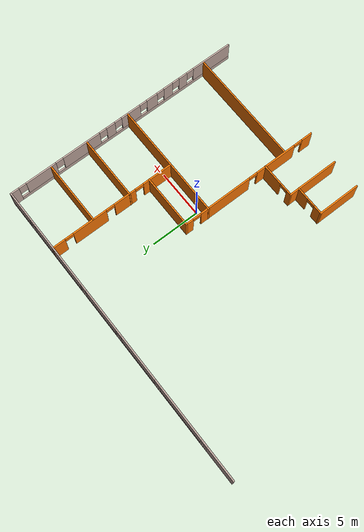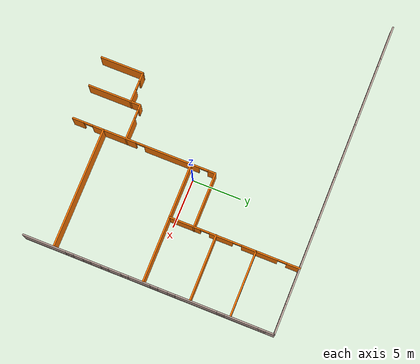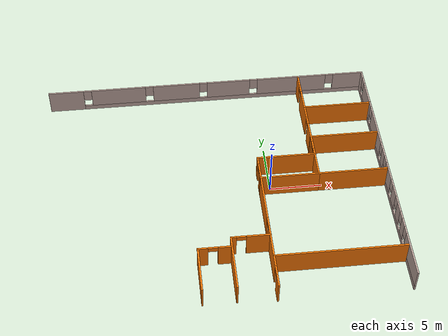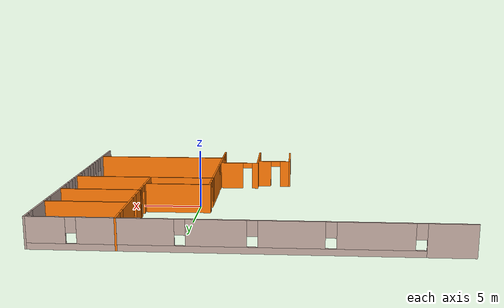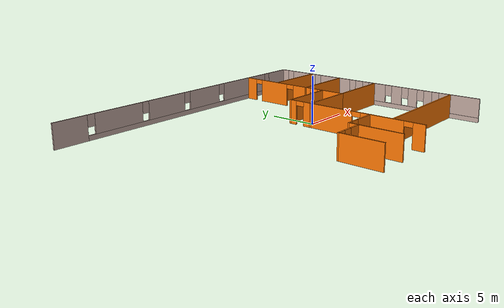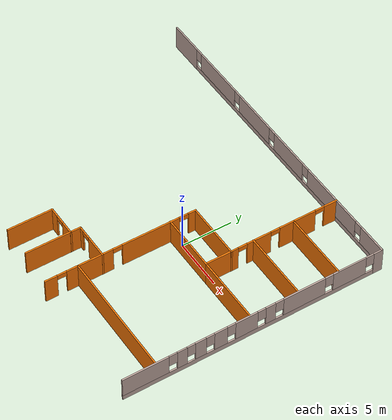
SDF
<sdf version="1.6">
 <model name="Building">
  <pose>-10.6691 -0.029366 0 0 -0 0</pose>
  <link name="Wall_158">
   <pose>5.73934 12.8407 0 0 -0 0</pose>
   <visual name="Wall_158_Visual_0">
    <pose>-14.4808 0 1.25 0 -0 0</pose>
    <geometry><box><size>3.53833 0.15 2.5</size></box></geometry>
    <material>
     <script><uri>file://media/materials/scripts/gazebo.material</uri><name>Gazebo/Grey</name></script>
     <ambient>0.760784 0.662745 0.627451 1</ambient>
    </material>
    <meta><layer>0</layer></meta>
   </visual>
   <collision name="Wall_158_Collision_0">
    <geometry><box><size>3.53833 0.15 2.5</size></box></geometry>
    <pose>-14.4808 0 1.25 0 -0 0</pose>
   </collision>
   <visual name="Wall_158_Visual_1">
    <pose>1.76917 0 0.25 0 -0 0</pose>
    <geometry><box><size>28.9617 0.15 0.5</size></box></geometry>
    <material>
     <script><uri>file://media/materials/scripts/gazebo.material</uri><name>Gazebo/Grey</name></script>
     <ambient>0.760784 0.662745 0.627451 1</ambient>
    </material>
    <meta><layer>0</layer></meta>
   </visual>
   <collision name="Wall_158_Collision_1">
    <geometry><box><size>28.9617 0.15 0.5</size></box></geometry>
    <pose>1.76917 0 0.25 0 -0 0</pose>
   </collision>
   <visual name="Wall_158_Visual_2">
    <pose>-9.14295 0 1.5 0 -0 0</pose>
    <geometry><box><size>5.53743 0.15 2</size></box></geometry>
    <material>
     <script><uri>file://media/materials/scripts/gazebo.material</uri><name>Gazebo/Grey</name></script>
     <ambient>0.760784 0.662745 0.627451 1</ambient>
    </material>
    <meta><layer>0</layer></meta>
   </visual>
   <collision name="Wall_158_Collision_2">
    <geometry><box><size>5.53743 0.15 2</size></box></geometry>
    <pose>-9.14295 0 1.5 0 -0 0</pose>
   </collision>
   <visual name="Wall_158_Visual_3">
    <pose>-3.18054 0 1.5 0 -0 0</pose>
    <geometry><box><size>4.7874 0.15 2</size></box></geometry>
    <material>
     <script><uri>file://media/materials/scripts/gazebo.material</uri><name>Gazebo/Grey</name></script>
     <ambient>0.760784 0.662745 0.627451 1</ambient>
    </material>
    <meta><layer>0</layer></meta>
   </visual>
   <collision name="Wall_158_Collision_3">
    <geometry><box><size>4.7874 0.15 2</size></box></geometry>
    <pose>-3.18054 0 1.5 0 -0 0</pose>
   </collision>
   <visual name="Wall_158_Visual_4">
    <pose>2.2199 0 1.5 0 -0 0</pose>
    <geometry><box><size>4.41347 0.15 2</size></box></geometry>
    <material>
     <script><uri>file://media/materials/scripts/gazebo.material</uri><name>Gazebo/Grey</name></script>
     <ambient>0.760784 0.662745 0.627451 1</ambient>
    </material>
    <meta><layer>0</layer></meta>
   </visual>
   <collision name="Wall_158_Collision_4">
    <geometry><box><size>4.41347 0.15 2</size></box></geometry>
    <pose>2.2199 0 1.5 0 -0 0</pose>
   </collision>
   <visual name="Wall_158_Visual_5">
    <pose>8.79242 0 1.5 0 -0 0</pose>
    <geometry><box><size>7.13158 0.15 2</size></box></geometry>
    <material>
     <script><uri>file://media/materials/scripts/gazebo.material</uri><name>Gazebo/Grey</name></script>
     <ambient>0.760784 0.662745 0.627451 1</ambient>
    </material>
    <meta><layer>0</layer></meta>
   </visual>
   <collision name="Wall_158_Collision_5">
    <geometry><box><size>7.13158 0.15 2</size></box></geometry>
    <pose>8.79242 0 1.5 0 -0 0</pose>
   </collision>
   <visual name="Wall_158_Visual_6">
    <pose>14.7041 0 1.5 0 -0 0</pose>
    <geometry><box><size>3.09179 0.15 2</size></box></geometry>
    <material>
     <script><uri>file://media/materials/scripts/gazebo.material</uri><name>Gazebo/Grey</name></script>
     <ambient>0.760784 0.662745 0.627451 1</ambient>
    </material>
    <meta><layer>0</layer></meta>
   </visual>
   <collision name="Wall_158_Collision_6">
    <geometry><box><size>3.09179 0.15 2</size></box></geometry>
    <pose>14.7041 0 1.5 0 -0 0</pose>
   </collision>
   <visual name="Wall_158_Visual_7">
    <pose>-12.3117 0 1.9 0 -0 0</pose>
    <geometry><box><size>0.8 0.15 1.2</size></box></geometry>
    <material>
     <script><uri>file://media/materials/scripts/gazebo.material</uri><name>Gazebo/Grey</name></script>
     <ambient>0.760784 0.662745 0.627451 1</ambient>
    </material>
    <meta><layer>0</layer></meta>
   </visual>
   <collision name="Wall_158_Collision_7">
    <geometry><box><size>0.8 0.15 1.2</size></box></geometry>
    <pose>-12.3117 0 1.9 0 -0 0</pose>
   </collision>
   <visual name="Wall_158_Visual_8">
    <pose>-5.97424 0 1.9 0 -0 0</pose>
    <geometry><box><size>0.8 0.15 1.2</size></box></geometry>
    <material>
     <script><uri>file://media/materials/scripts/gazebo.material</uri><name>Gazebo/Grey</name></script>
     <ambient>0.760784 0.662745 0.627451 1</ambient>
    </material>
    <meta><layer>0</layer></meta>
   </visual>
   <collision name="Wall_158_Collision_8">
    <geometry><box><size>0.8 0.15 1.2</size></box></geometry>
    <pose>-5.97424 0 1.9 0 -0 0</pose>
   </collision>
   <visual name="Wall_158_Visual_9">
    <pose>-0.386836 0 1.9 0 -0 0</pose>
    <geometry><box><size>0.8 0.15 1.2</size></box></geometry>
    <material>
     <script><uri>file://media/materials/scripts/gazebo.material</uri><name>Gazebo/Grey</name></script>
     <ambient>0.760784 0.662745 0.627451 1</ambient>
    </material>
    <meta><layer>0</layer></meta>
   </visual>
   <collision name="Wall_158_Collision_9">
    <geometry><box><size>0.8 0.15 1.2</size></box></geometry>
    <pose>-0.386836 0 1.9 0 -0 0</pose>
   </collision>
   <visual name="Wall_158_Visual_10">
    <pose>4.82663 0 1.9 0 -0 0</pose>
    <geometry><box><size>0.8 0.15 1.2</size></box></geometry>
    <material>
     <script><uri>file://media/materials/scripts/gazebo.material</uri><name>Gazebo/Grey</name></script>
     <ambient>0.760784 0.662745 0.627451 1</ambient>
    </material>
    <meta><layer>0</layer></meta>
   </visual>
   <collision name="Wall_158_Collision_10">
    <geometry><box><size>0.8 0.15 1.2</size></box></geometry>
    <pose>4.82663 0 1.9 0 -0 0</pose>
   </collision>
   <visual name="Wall_158_Visual_11">
    <pose>12.7582 0 1.9 0 -0 0</pose>
    <geometry><box><size>0.8 0.15 1.2</size></box></geometry>
    <material>
     <script><uri>file://media/materials/scripts/gazebo.material</uri><name>Gazebo/Grey</name></script>
     <ambient>0.760784 0.662745 0.627451 1</ambient>
    </material>
    <meta><layer>0</layer></meta>
   </visual>
   <collision name="Wall_158_Collision_11">
    <geometry><box><size>0.8 0.15 1.2</size></box></geometry>
    <pose>12.7582 0 1.9 0 -0 0</pose>
   </collision>
  </link>
  <link name="Wall_160">
   <pose>21.925 0.027541 0 0 0 -1.56997</pose>
   <visual name="Wall_160_Visual_0">
    <pose>-12.4183 0 1.25 0 -0 0</pose>
    <geometry><box><size>0.939904 0.15 2.5</size></box></geometry>
    <material>
     <script><uri>file://media/materials/scripts/gazebo.material</uri><name>Gazebo/Grey</name></script>
     <ambient>0.760784 0.662745 0.627451 1</ambient>
    </material>
    <meta><layer>0</layer></meta>
   </visual>
   <collision name="Wall_160_Collision_0">
    <geometry><box><size>0.939904 0.15 2.5</size></box></geometry>
    <pose>-12.4183 0 1.25 0 -0 0</pose>
   </collision>
   <visual name="Wall_160_Visual_1">
    <pose>0.469952 0 0.25 0 -0 0</pose>
    <geometry><box><size>24.8365 0.15 0.5</size></box></geometry>
    <material>
     <script><uri>file://media/materials/scripts/gazebo.material</uri><name>Gazebo/Grey</name></script>
     <ambient>0.760784 0.662745 0.627451 1</ambient>
    </material>
    <meta><layer>0</layer></meta>
   </visual>
   <collision name="Wall_160_Collision_1">
    <geometry><box><size>24.8365 0.15 0.5</size></box></geometry>
    <pose>0.469952 0 0.25 0 -0 0</pose>
   </collision>
   <visual name="Wall_160_Visual_2">
    <pose>-9.46541 0 1.5 0 -0 0</pose>
    <geometry><box><size>3.36577 0.15 2</size></box></geometry>
    <material>
     <script><uri>file://media/materials/scripts/gazebo.material</uri><name>Gazebo/Grey</name></script>
     <ambient>0.760784 0.662745 0.627451 1</ambient>
    </material>
    <meta><layer>0</layer></meta>
   </visual>
   <collision name="Wall_160_Collision_2">
    <geometry><box><size>3.36577 0.15 2</size></box></geometry>
    <pose>-9.46541 0 1.5 0 -0 0</pose>
   </collision>
   <visual name="Wall_160_Visual_3">
    <pose>-4.87743 0 1.5 0 -0 0</pose>
    <geometry><box><size>4.21019 0.15 2</size></box></geometry>
    <material>
     <script><uri>file://media/materials/scripts/gazebo.material</uri><name>Gazebo/Grey</name></script>
     <ambient>0.760784 0.662745 0.627451 1</ambient>
    </material>
    <meta><layer>0</layer></meta>
   </visual>
   <collision name="Wall_160_Collision_3">
    <geometry><box><size>4.21019 0.15 2</size></box></geometry>
    <pose>-4.87743 0 1.5 0 -0 0</pose>
   </collision>
   <visual name="Wall_160_Visual_4">
    <pose>-1.48571 0 1.5 0 -0 0</pose>
    <geometry><box><size>0.973268 0.15 2</size></box></geometry>
    <material>
     <script><uri>file://media/materials/scripts/gazebo.material</uri><name>Gazebo/Grey</name></script>
     <ambient>0.760784 0.662745 0.627451 1</ambient>
    </material>
    <meta><layer>0</layer></meta>
   </visual>
   <collision name="Wall_160_Collision_4">
    <geometry><box><size>0.973268 0.15 2</size></box></geometry>
    <pose>-1.48571 0 1.5 0 -0 0</pose>
   </collision>
   <visual name="Wall_160_Visual_5">
    <pose>0.892725 0 1.5 0 -0 0</pose>
    <geometry><box><size>2.18359 0.15 2</size></box></geometry>
    <material>
     <script><uri>file://media/materials/scripts/gazebo.material</uri><name>Gazebo/Grey</name></script>
     <ambient>0.760784 0.662745 0.627451 1</ambient>
    </material>
    <meta><layer>0</layer></meta>
   </visual>
   <collision name="Wall_160_Collision_5">
    <geometry><box><size>2.18359 0.15 2</size></box></geometry>
    <pose>0.892725 0 1.5 0 -0 0</pose>
   </collision>
   <visual name="Wall_160_Visual_6">
    <pose>3.41189 0 1.5 0 -0 0</pose>
    <geometry><box><size>1.25474 0.15 2</size></box></geometry>
    <material>
     <script><uri>file://media/materials/scripts/gazebo.material</uri><name>Gazebo/Grey</name></script>
     <ambient>0.760784 0.662745 0.627451 1</ambient>
    </material>
    <meta><layer>0</layer></meta>
   </visual>
   <collision name="Wall_160_Collision_6">
    <geometry><box><size>1.25474 0.15 2</size></box></geometry>
    <pose>3.41189 0 1.5 0 -0 0</pose>
   </collision>
   <visual name="Wall_160_Visual_7">
    <pose>5.36812 0 1.5 0 -0 0</pose>
    <geometry><box><size>1.05771 0.15 2</size></box></geometry>
    <material>
     <script><uri>file://media/materials/scripts/gazebo.material</uri><name>Gazebo/Grey</name></script>
     <ambient>0.760784 0.662745 0.627451 1</ambient>
    </material>
    <meta><layer>0</layer></meta>
   </visual>
   <collision name="Wall_160_Collision_7">
    <geometry><box><size>1.05771 0.15 2</size></box></geometry>
    <pose>5.36812 0 1.5 0 -0 0</pose>
   </collision>
   <visual name="Wall_160_Visual_8">
    <pose>7.16955 0 1.5 0 -0 0</pose>
    <geometry><box><size>0.945153 0.15 2</size></box></geometry>
    <material>
     <script><uri>file://media/materials/scripts/gazebo.material</uri><name>Gazebo/Grey</name></script>
     <ambient>0.760784 0.662745 0.627451 1</ambient>
    </material>
    <meta><layer>0</layer></meta>
   </visual>
   <collision name="Wall_160_Collision_8">
    <geometry><box><size>0.945153 0.15 2</size></box></geometry>
    <pose>7.16955 0 1.5 0 -0 0</pose>
   </collision>
   <visual name="Wall_160_Visual_9">
    <pose>10.6652 0 1.5 0 -0 0</pose>
    <geometry><box><size>4.44608 0.15 2</size></box></geometry>
    <material>
     <script><uri>file://media/materials/scripts/gazebo.material</uri><name>Gazebo/Grey</name></script>
     <ambient>0.760784 0.662745 0.627451 1</ambient>
    </material>
    <meta><layer>0</layer></meta>
   </visual>
   <collision name="Wall_160_Collision_9">
    <geometry><box><size>4.44608 0.15 2</size></box></geometry>
    <pose>10.6652 0 1.5 0 -0 0</pose>
   </collision>
   <visual name="Wall_160_Visual_10">
    <pose>-11.5483 0 1.9 0 -0 0</pose>
    <geometry><box><size>0.8 0.15 1.2</size></box></geometry>
    <material>
     <script><uri>file://media/materials/scripts/gazebo.material</uri><name>Gazebo/Grey</name></script>
     <ambient>0.760784 0.662745 0.627451 1</ambient>
    </material>
    <meta><layer>0</layer></meta>
   </visual>
   <collision name="Wall_160_Collision_10">
    <geometry><box><size>0.8 0.15 1.2</size></box></geometry>
    <pose>-11.5483 0 1.9 0 -0 0</pose>
   </collision>
   <visual name="Wall_160_Visual_11">
    <pose>-7.38253 0 1.9 0 -0 0</pose>
    <geometry><box><size>0.8 0.15 1.2</size></box></geometry>
    <material>
     <script><uri>file://media/materials/scripts/gazebo.material</uri><name>Gazebo/Grey</name></script>
     <ambient>0.760784 0.662745 0.627451 1</ambient>
    </material>
    <meta><layer>0</layer></meta>
   </visual>
   <collision name="Wall_160_Collision_11">
    <geometry><box><size>0.8 0.15 1.2</size></box></geometry>
    <pose>-7.38253 0 1.9 0 -0 0</pose>
   </collision>
   <visual name="Wall_160_Visual_12">
    <pose>-2.37234 0 1.9 0 -0 0</pose>
    <geometry><box><size>0.8 0.15 1.2</size></box></geometry>
    <material>
     <script><uri>file://media/materials/scripts/gazebo.material</uri><name>Gazebo/Grey</name></script>
     <ambient>0.760784 0.662745 0.627451 1</ambient>
    </material>
    <meta><layer>0</layer></meta>
   </visual>
   <collision name="Wall_160_Collision_12">
    <geometry><box><size>0.8 0.15 1.2</size></box></geometry>
    <pose>-2.37234 0 1.9 0 -0 0</pose>
   </collision>
   <visual name="Wall_160_Visual_13">
    <pose>-0.599072 0 1.9 0 -0 0</pose>
    <geometry><box><size>0.8 0.15 1.2</size></box></geometry>
    <material>
     <script><uri>file://media/materials/scripts/gazebo.material</uri><name>Gazebo/Grey</name></script>
     <ambient>0.760784 0.662745 0.627451 1</ambient>
    </material>
    <meta><layer>0</layer></meta>
   </visual>
   <collision name="Wall_160_Collision_13">
    <geometry><box><size>0.8 0.15 1.2</size></box></geometry>
    <pose>-0.599072 0 1.9 0 -0 0</pose>
   </collision>
   <visual name="Wall_160_Visual_14">
    <pose>2.38452 0 1.9 0 -0 0</pose>
    <geometry><box><size>0.8 0.15 1.2</size></box></geometry>
    <material>
     <script><uri>file://media/materials/scripts/gazebo.material</uri><name>Gazebo/Grey</name></script>
     <ambient>0.760784 0.662745 0.627451 1</ambient>
    </material>
    <meta><layer>0</layer></meta>
   </visual>
   <collision name="Wall_160_Collision_14">
    <geometry><box><size>0.8 0.15 1.2</size></box></geometry>
    <pose>2.38452 0 1.9 0 -0 0</pose>
   </collision>
   <visual name="Wall_160_Visual_15">
    <pose>4.43926 0 1.9 0 -0 0</pose>
    <geometry><box><size>0.8 0.15 1.2</size></box></geometry>
    <material>
     <script><uri>file://media/materials/scripts/gazebo.material</uri><name>Gazebo/Grey</name></script>
     <ambient>0.760784 0.662745 0.627451 1</ambient>
    </material>
    <meta><layer>0</layer></meta>
   </visual>
   <collision name="Wall_160_Collision_15">
    <geometry><box><size>0.8 0.15 1.2</size></box></geometry>
    <pose>4.43926 0 1.9 0 -0 0</pose>
   </collision>
   <visual name="Wall_160_Visual_16">
    <pose>6.29697 0 1.9 0 -0 0</pose>
    <geometry><box><size>0.8 0.15 1.2</size></box></geometry>
    <material>
     <script><uri>file://media/materials/scripts/gazebo.material</uri><name>Gazebo/Grey</name></script>
     <ambient>0.760784 0.662745 0.627451 1</ambient>
    </material>
    <meta><layer>0</layer></meta>
   </visual>
   <collision name="Wall_160_Collision_16">
    <geometry><box><size>0.8 0.15 1.2</size></box></geometry>
    <pose>6.29697 0 1.9 0 -0 0</pose>
   </collision>
   <visual name="Wall_160_Visual_17">
    <pose>8.04212 0 1.9 0 -0 0</pose>
    <geometry><box><size>0.8 0.15 1.2</size></box></geometry>
    <material>
     <script><uri>file://media/materials/scripts/gazebo.material</uri><name>Gazebo/Grey</name></script>
     <ambient>0.760784 0.662745 0.627451 1</ambient>
    </material>
    <meta><layer>0</layer></meta>
   </visual>
   <collision name="Wall_160_Collision_17">
    <geometry><box><size>0.8 0.15 1.2</size></box></geometry>
    <pose>8.04212 0 1.9 0 -0 0</pose>
   </collision>
  </link>
  <link name="Wall_168">
   <pose>15.2204 6.16765 0 0 0 -1.5708</pose>
   <visual name="Wall_168_Visual_0">
    <pose>-6.05122 0 1.25 0 -0 0</pose>
    <geometry><box><size>1.39756 0.15 2.5</size></box></geometry>
    <material>
     <script><uri>file://media/materials/scripts/gazebo.material</uri><name>Gazebo/Grey</name></script>
     <ambient>0.996078 0.47451 0.0196078 1</ambient>
    </material>
    <meta><layer>0</layer></meta>
   </visual>
   <collision name="Wall_168_Collision_0">
    <geometry><box><size>1.39756 0.15 2.5</size></box></geometry>
    <pose>-6.05122 0 1.25 0 -0 0</pose>
   </collision>
   <visual name="Wall_168_Visual_1">
    <pose>-2.60621 0 1.25 0 -0 0</pose>
    <geometry><box><size>3.69245 0.15 2.5</size></box></geometry>
    <material>
     <script><uri>file://media/materials/scripts/gazebo.material</uri><name>Gazebo/Grey</name></script>
     <ambient>0.996078 0.47451 0.0196078 1</ambient>
    </material>
    <meta><layer>0</layer></meta>
   </visual>
   <collision name="Wall_168_Collision_1">
    <geometry><box><size>3.69245 0.15 2.5</size></box></geometry>
    <pose>-2.60621 0 1.25 0 -0 0</pose>
   </collision>
   <visual name="Wall_168_Visual_2">
    <pose>1.3484 0 1.25 0 -0 0</pose>
    <geometry><box><size>2.41677 0.15 2.5</size></box></geometry>
    <material>
     <script><uri>file://media/materials/scripts/gazebo.material</uri><name>Gazebo/Grey</name></script>
     <ambient>0.996078 0.47451 0.0196078 1</ambient>
    </material>
    <meta><layer>0</layer></meta>
   </visual>
   <collision name="Wall_168_Collision_2">
    <geometry><box><size>2.41677 0.15 2.5</size></box></geometry>
    <pose>1.3484 0 1.25 0 -0 0</pose>
   </collision>
   <visual name="Wall_168_Visual_3">
    <pose>5.10339 0 1.25 0 -0 0</pose>
    <geometry><box><size>3.29322 0.15 2.5</size></box></geometry>
    <material>
     <script><uri>file://media/materials/scripts/gazebo.material</uri><name>Gazebo/Grey</name></script>
     <ambient>0.996078 0.47451 0.0196078 1</ambient>
    </material>
    <meta><layer>0</layer></meta>
   </visual>
   <collision name="Wall_168_Collision_3">
    <geometry><box><size>3.29322 0.15 2.5</size></box></geometry>
    <pose>5.10339 0 1.25 0 -0 0</pose>
   </collision>
   <visual name="Wall_168_Visual_4">
    <pose>-4.90244 0 2.25 0 -0 0</pose>
    <geometry><box><size>0.9 0.15 0.5</size></box></geometry>
    <material>
     <script><uri>file://media/materials/scripts/gazebo.material</uri><name>Gazebo/Grey</name></script>
     <ambient>0.996078 0.47451 0.0196078 1</ambient>
    </material>
    <meta><layer>0</layer></meta>
   </visual>
   <collision name="Wall_168_Collision_4">
    <geometry><box><size>0.9 0.15 0.5</size></box></geometry>
    <pose>-4.90244 0 2.25 0 -0 0</pose>
   </collision>
   <visual name="Wall_168_Visual_5">
    <pose>-0.309989 0 2.25 0 -0 0</pose>
    <geometry><box><size>0.9 0.15 0.5</size></box></geometry>
    <material>
     <script><uri>file://media/materials/scripts/gazebo.material</uri><name>Gazebo/Grey</name></script>
     <ambient>0.996078 0.47451 0.0196078 1</ambient>
    </material>
    <meta><layer>0</layer></meta>
   </visual>
   <collision name="Wall_168_Collision_5">
    <geometry><box><size>0.9 0.15 0.5</size></box></geometry>
    <pose>-0.309989 0 2.25 0 -0 0</pose>
   </collision>
   <visual name="Wall_168_Visual_6">
    <pose>3.00678 0 2.25 0 -0 0</pose>
    <geometry><box><size>0.9 0.15 0.5</size></box></geometry>
    <material>
     <script><uri>file://media/materials/scripts/gazebo.material</uri><name>Gazebo/Grey</name></script>
     <ambient>0.996078 0.47451 0.0196078 1</ambient>
    </material>
    <meta><layer>0</layer></meta>
   </visual>
   <collision name="Wall_168_Collision_6">
    <geometry><box><size>0.9 0.15 0.5</size></box></geometry>
    <pose>3.00678 0 2.25 0 -0 0</pose>
   </collision>
  </link>
  <link name="Wall_169">
   <collision name="Wall_169_Collision">
    <geometry><box><size>6.75 0.15 2.5</size></box></geometry>
    <pose>0 0 1.25 0 -0 0</pose>
   </collision>
   <visual name="Wall_169_Visual">
    <pose>0 0 1.25 0 -0 0</pose>
    <geometry><box><size>6.75 0.15 2.5</size></box></geometry>
    <material>
     <script><uri>file://media/materials/scripts/gazebo.material</uri><name>Gazebo/Grey</name></script>
     <ambient>0.996078 0.47451 0.0196078 1</ambient>
    </material>
    <meta><layer>0</layer></meta>
   </visual>
   <pose>18.5204 -0.507347 0 0 -0 0</pose>
  </link>
  <link name="Wall_171">
   <collision name="Wall_171_Collision">
    <geometry><box><size>6.75 0.15 2.5</size></box></geometry>
    <pose>0 0 1.25 0 -0 0</pose>
   </collision>
   <visual name="Wall_171_Visual">
    <pose>0 0 1.25 0 -0 0</pose>
    <geometry><box><size>6.75 0.15 2.5</size></box></geometry>
    <material>
     <script><uri>file://media/materials/scripts/gazebo.material</uri><name>Gazebo/Grey</name></script>
     <ambient>0.996078 0.47451 0.0196078 1</ambient>
    </material>
    <meta><layer>0</layer></meta>
   </visual>
   <pose>18.5682 8.3698 0 0 -0 0</pose>
  </link>
  <link name="Wall_173">
   <collision name="Wall_173_Collision">
    <geometry><box><size>6.75 0.15 2.5</size></box></geometry>
    <pose>0 0 1.25 0 -0 0</pose>
   </collision>
   <visual name="Wall_173_Visual">
    <pose>0 0 1.25 0 -0 0</pose>
    <geometry><box><size>6.75 0.15 2.5</size></box></geometry>
    <material>
     <script><uri>file://media/materials/scripts/gazebo.material</uri><name>Gazebo/Grey</name></script>
     <ambient>0.996078 0.47451 0.0196078 1</ambient>
    </material>
    <meta><layer>0</layer></meta>
   </visual>
   <pose>18.4965 4.27965 0 0 -0 0</pose>
  </link>
  <link name="Wall_176">
   <collision name="Wall_176_Collision">
    <geometry><box><size>5.75 0.15 2.5</size></box></geometry>
    <pose>0 0 1.25 0 -0 0</pose>
   </collision>
   <visual name="Wall_176_Visual">
    <pose>0 0 1.25 0 -0 0</pose>
    <geometry><box><size>5.75 0.15 2.5</size></box></geometry>
    <material>
     <script><uri>file://media/materials/scripts/gazebo.material</uri><name>Gazebo/Grey</name></script>
     <ambient>0.996078 0.47451 0.0196078 1</ambient>
    </material>
    <meta><layer>0</layer></meta>
   </visual>
   <pose>12.4443 2.00735 0 0 -0 3.14159</pose>
  </link>
  <link name="Wall_177">
   <pose>9.64433 -5.41765 0 0 0 -1.5708</pose>
   <visual name="Wall_177_Visual_0">
    <pose>-7.08426 0 1.25 0 -0 0</pose>
    <geometry><box><size>0.83148 0.15 2.5</size></box></geometry>
    <material>
     <script><uri>file://media/materials/scripts/gazebo.material</uri><name>Gazebo/Grey</name></script>
     <ambient>0.996078 0.47451 0.0196078 1</ambient>
    </material>
    <meta><layer>0</layer></meta>
   </visual>
   <collision name="Wall_177_Collision_0">
    <geometry><box><size>0.83148 0.15 2.5</size></box></geometry>
    <pose>-7.08426 0 1.25 0 -0 0</pose>
   </collision>
   <visual name="Wall_177_Visual_1">
    <pose>-2.91238 0 1.25 0 -0 0</pose>
    <geometry><box><size>5.71227 0.15 2.5</size></box></geometry>
    <material>
     <script><uri>file://media/materials/scripts/gazebo.material</uri><name>Gazebo/Grey</name></script>
     <ambient>0.996078 0.47451 0.0196078 1</ambient>
    </material>
    <meta><layer>0</layer></meta>
   </visual>
   <collision name="Wall_177_Collision_1">
    <geometry><box><size>5.71227 0.15 2.5</size></box></geometry>
    <pose>-2.91238 0 1.25 0 -0 0</pose>
   </collision>
   <visual name="Wall_177_Visual_2">
    <pose>3.11521 0 1.25 0 -0 0</pose>
    <geometry><box><size>4.5429 0.15 2.5</size></box></geometry>
    <material>
     <script><uri>file://media/materials/scripts/gazebo.material</uri><name>Gazebo/Grey</name></script>
     <ambient>0.996078 0.47451 0.0196078 1</ambient>
    </material>
    <meta><layer>0</layer></meta>
   </visual>
   <collision name="Wall_177_Collision_2">
    <geometry><box><size>4.5429 0.15 2.5</size></box></geometry>
    <pose>3.11521 0 1.25 0 -0 0</pose>
   </collision>
   <visual name="Wall_177_Visual_3">
    <pose>6.89333 0 1.25 0 -0 0</pose>
    <geometry><box><size>1.21334 0.15 2.5</size></box></geometry>
    <material>
     <script><uri>file://media/materials/scripts/gazebo.material</uri><name>Gazebo/Grey</name></script>
     <ambient>0.996078 0.47451 0.0196078 1</ambient>
    </material>
    <meta><layer>0</layer></meta>
   </visual>
   <collision name="Wall_177_Collision_3">
    <geometry><box><size>1.21334 0.15 2.5</size></box></geometry>
    <pose>6.89333 0 1.25 0 -0 0</pose>
   </collision>
   <visual name="Wall_177_Visual_4">
    <pose>-6.21852 0 2.25 0 -0 0</pose>
    <geometry><box><size>0.9 0.15 0.5</size></box></geometry>
    <material>
     <script><uri>file://media/materials/scripts/gazebo.material</uri><name>Gazebo/Grey</name></script>
     <ambient>0.996078 0.47451 0.0196078 1</ambient>
    </material>
    <meta><layer>0</layer></meta>
   </visual>
   <collision name="Wall_177_Collision_4">
    <geometry><box><size>0.9 0.15 0.5</size></box></geometry>
    <pose>-6.21852 0 2.25 0 -0 0</pose>
   </collision>
   <visual name="Wall_177_Visual_5">
    <pose>0.393754 0 2.25 0 -0 0</pose>
    <geometry><box><size>0.9 0.15 0.5</size></box></geometry>
    <material>
     <script><uri>file://media/materials/scripts/gazebo.material</uri><name>Gazebo/Grey</name></script>
     <ambient>0.996078 0.47451 0.0196078 1</ambient>
    </material>
    <meta><layer>0</layer></meta>
   </visual>
   <collision name="Wall_177_Collision_5">
    <geometry><box><size>0.9 0.15 0.5</size></box></geometry>
    <pose>0.393754 0 2.25 0 -0 0</pose>
   </collision>
   <visual name="Wall_177_Visual_6">
    <pose>5.83666 0 2.25 0 -0 0</pose>
    <geometry><box><size>0.9 0.15 0.5</size></box></geometry>
    <material>
     <script><uri>file://media/materials/scripts/gazebo.material</uri><name>Gazebo/Grey</name></script>
     <ambient>0.996078 0.47451 0.0196078 1</ambient>
    </material>
    <meta><layer>0</layer></meta>
   </visual>
   <collision name="Wall_177_Collision_6">
    <geometry><box><size>0.9 0.15 0.5</size></box></geometry>
    <pose>5.83666 0 2.25 0 -0 0</pose>
   </collision>
  </link>
  <link name="Wall_179">
   <collision name="Wall_179_Collision">
    <geometry><box><size>5.75 0.15 2.5</size></box></geometry>
    <pose>0 0 1.25 0 -0 0</pose>
   </collision>
   <visual name="Wall_179_Visual">
    <pose>0 0 1.25 0 -0 0</pose>
    <geometry><box><size>5.75 0.15 2.5</size></box></geometry>
    <material>
     <script><uri>file://media/materials/scripts/gazebo.material</uri><name>Gazebo/Grey</name></script>
     <ambient>0.996078 0.47451 0.0196078 1</ambient>
    </material>
    <meta><layer>0</layer></meta>
   </visual>
   <pose>12.4204 -0.507347 0 0 -0 3.14159</pose>
  </link>
  <link name="Wall_181">
   <collision name="Wall_181_Collision">
    <geometry><box><size>12.25 0.15 2.5</size></box></geometry>
    <pose>0 0 1.25 0 -0 0</pose>
   </collision>
   <visual name="Wall_181_Visual">
    <pose>0 0 1.25 0 -0 0</pose>
    <geometry><box><size>12.25 0.15 2.5</size></box></geometry>
    <material>
     <script><uri>file://media/materials/scripts/gazebo.material</uri><name>Gazebo/Grey</name></script>
     <ambient>0.996078 0.47451 0.0196078 1</ambient>
    </material>
    <meta><layer>0</layer></meta>
   </visual>
   <pose>15.7415 -9.67071 0 0 -0 0</pose>
  </link>
  <link name="Wall_183">
   <pose>7.84956 -7.30115 0 0 -0 3.14159</pose>
   <visual name="Wall_183_Visual_0">
    <pose>-0.737336 0 1.25 0 -0 0</pose>
    <geometry><box><size>2.27533 0.15 2.5</size></box></geometry>
    <material>
     <script><uri>file://media/materials/scripts/gazebo.material</uri><name>Gazebo/Grey</name></script>
     <ambient>0.996078 0.47451 0.0196078 1</ambient>
    </material>
    <meta><layer>0</layer></meta>
   </visual>
   <collision name="Wall_183_Collision_0">
    <geometry><box><size>2.27533 0.15 2.5</size></box></geometry>
    <pose>-0.737336 0 1.25 0 -0 0</pose>
   </collision>
   <visual name="Wall_183_Visual_1">
    <pose>1.58766 0 1.25 0 -0 0</pose>
    <geometry><box><size>0.574672 0.15 2.5</size></box></geometry>
    <material>
     <script><uri>file://media/materials/scripts/gazebo.material</uri><name>Gazebo/Grey</name></script>
     <ambient>0.996078 0.47451 0.0196078 1</ambient>
    </material>
    <meta><layer>0</layer></meta>
   </visual>
   <collision name="Wall_183_Collision_1">
    <geometry><box><size>0.574672 0.15 2.5</size></box></geometry>
    <pose>1.58766 0 1.25 0 -0 0</pose>
   </collision>
   <visual name="Wall_183_Visual_2">
    <pose>0.850328 0 2.25 0 -0 0</pose>
    <geometry><box><size>0.9 0.15 0.5</size></box></geometry>
    <material>
     <script><uri>file://media/materials/scripts/gazebo.material</uri><name>Gazebo/Grey</name></script>
     <ambient>0.996078 0.47451 0.0196078 1</ambient>
    </material>
    <meta><layer>0</layer></meta>
   </visual>
   <collision name="Wall_183_Collision_2">
    <geometry><box><size>0.9 0.15 0.5</size></box></geometry>
    <pose>0.850328 0 2.25 0 -0 0</pose>
   </collision>
  </link>
  <link name="Wall_184">
   <collision name="Wall_184_Collision">
    <geometry><box><size>5.5 0.15 2.5</size></box></geometry>
    <pose>0 0 1.25 0 -0 0</pose>
   </collision>
   <visual name="Wall_184_Visual">
    <pose>0 0 1.25 0 -0 0</pose>
    <geometry><box><size>5.5 0.15 2.5</size></box></geometry>
    <material>
     <script><uri>file://media/materials/scripts/gazebo.material</uri><name>Gazebo/Grey</name></script>
     <ambient>0.996078 0.47451 0.0196078 1</ambient>
    </material>
    <meta><layer>0</layer></meta>
   </visual>
   <pose>6.04956 -9.97615 0 0 0 -1.5708</pose>
  </link>
  <link name="Wall_186">
   <pose>4.51377 -8.28672 0 0 -0 3.14159</pose>
   <visual name="Wall_186_Visual_0">
    <pose>-0.940765 0 1.25 0 -0 0</pose>
    <geometry><box><size>1.36847 0.15 2.5</size></box></geometry>
    <material>
     <script><uri>file://media/materials/scripts/gazebo.material</uri><name>Gazebo/Grey</name></script>
     <ambient>0.996078 0.47451 0.0196078 1</ambient>
    </material>
    <meta><layer>0</layer></meta>
   </visual>
   <collision name="Wall_186_Collision_0">
    <geometry><box><size>1.36847 0.15 2.5</size></box></geometry>
    <pose>-0.940765 0 1.25 0 -0 0</pose>
   </collision>
   <visual name="Wall_186_Visual_1">
    <pose>1.13424 0 1.25 0 -0 0</pose>
    <geometry><box><size>0.981529 0.15 2.5</size></box></geometry>
    <material>
     <script><uri>file://media/materials/scripts/gazebo.material</uri><name>Gazebo/Grey</name></script>
     <ambient>0.996078 0.47451 0.0196078 1</ambient>
    </material>
    <meta><layer>0</layer></meta>
   </visual>
   <collision name="Wall_186_Collision_1">
    <geometry><box><size>0.981529 0.15 2.5</size></box></geometry>
    <pose>1.13424 0 1.25 0 -0 0</pose>
   </collision>
   <visual name="Wall_186_Visual_2">
    <pose>0.193471 0 2.25 0 -0 0</pose>
    <geometry><box><size>0.9 0.15 0.5</size></box></geometry>
    <material>
     <script><uri>file://media/materials/scripts/gazebo.material</uri><name>Gazebo/Grey</name></script>
     <ambient>0.996078 0.47451 0.0196078 1</ambient>
    </material>
    <meta><layer>0</layer></meta>
   </visual>
   <collision name="Wall_186_Collision_2">
    <geometry><box><size>0.9 0.15 0.5</size></box></geometry>
    <pose>0.193471 0 2.25 0 -0 0</pose>
   </collision>
  </link>
  <link name="Wall_187">
   <collision name="Wall_187_Collision">
    <geometry><box><size>4.5 0.15 2.5</size></box></geometry>
    <pose>0 0 1.25 0 -0 0</pose>
   </collision>
   <visual name="Wall_187_Visual">
    <pose>0 0 1.25 0 -0 0</pose>
    <geometry><box><size>4.5 0.15 2.5</size></box></geometry>
    <material>
     <script><uri>file://media/materials/scripts/gazebo.material</uri><name>Gazebo/Grey</name></script>
     <ambient>0.996078 0.47451 0.0196078 1</ambient>
    </material>
    <meta><layer>0</layer></meta>
   </visual>
   <pose>2.96377 -10.4617 0 0 0 -1.5708</pose>
  </link>
  <static>1</static>
 </model>
</sdf>
